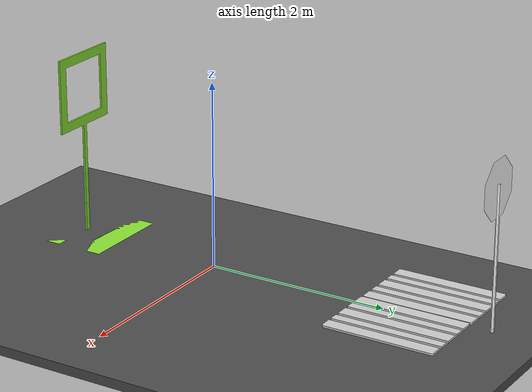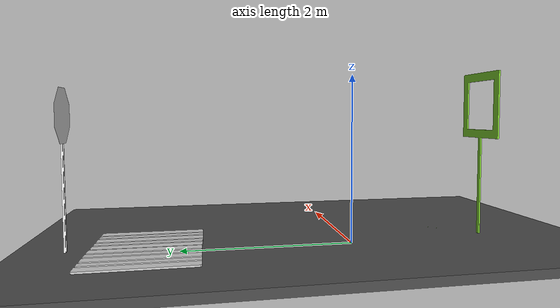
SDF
<?xml version='1.0'?>
<sdf version='1.7'>
  <model name='one_gate_model'>
    <model name='Stop Sign'>
      <static>1</static>
      <link name='link'>
        <collision name='collision'>
          <geometry>
            <mesh>
              <uri>model://stop_sign/meshes/stop_sign.dae</uri>
            </mesh>
          </geometry>
        </collision>
        <visual name='visual'>
          <geometry>
            <mesh>
              <uri>model://stop_sign/meshes/stop_sign.dae</uri>
            </mesh>
          </geometry>
          <material>
            <script>
              <uri>model://stop_sign/materials/scripts</uri>
              <uri>model://stop_sign/materials/textures</uri>
              <name>StopSign/Diffuse</name>
            </script>
          </material>
        </visual>
      </link>
      <pose>0.007187 3.19448 0 0 -0 0</pose>
    </model>
    <model name='asphalt_plane'>
      <static>1</static>
      <link name='link'>
        <collision name='collision'>
          <geometry>
            <box>
              <size>20 20 0.1</size>
            </box>
          </geometry>
        </collision>
        <visual name='visual'>
          <cast_shadows>0</cast_shadows>
          <geometry>
            <box>
              <size>20 20 0.1</size>
            </box>
          </geometry>
          <material>
            <script>
              <uri>model://asphalt_plane/materials/scripts</uri>
              <uri>model://asphalt_plane/materials/textures</uri>
              <name>vrc/asphalt</name>
            </script>
          </material>
        </visual>
      </link>
      <pose>0.069758 -6.25762 0 0 -0 0</pose>
    </model>
    <model name='euro_pallet'>
      <link name='link'>
        <pose>0 0 0 0 -0 0</pose>
        <inertial>
          <mass>20</mass>
          <inertia>
            <ixx>2.43</ixx>
            <ixy>0</ixy>
            <ixz>0</ixz>
            <iyy>1.1</iyy>
            <iyz>0</iyz>
            <izz>3.47</izz>
          </inertia>
        </inertial>
        <collision name='collision'>
          <pose>0 0 0.05 0 -0 0</pose>
          <geometry>
            <mesh>
              <uri>model://euro_pallet/meshes/pallet.dae</uri>
              <scale>0.1 0.1 0.1</scale>
            </mesh>
          </geometry>
        </collision>
        <visual name='visual'>
          <pose>0 0 0.05 0 -0 0</pose>
          <geometry>
            <mesh>
              <uri>model://euro_pallet/meshes/pallet.dae</uri>
              <scale>0.1 0.1 0.1</scale>
            </mesh>
          </geometry>
        </visual>
      </link>
      <pose>-0.42363 2.35188 0 0 -0 0</pose>
    </model>
    <model name='euro_pallet_0'>
      <link name='link'>
        <pose>0 0 0 0 -0 0</pose>
        <inertial>
          <mass>20</mass>
          <inertia>
            <ixx>2.43</ixx>
            <ixy>0</ixy>
            <ixz>0</ixz>
            <iyy>1.1</iyy>
            <iyz>0</iyz>
            <izz>3.47</izz>
          </inertia>
        </inertial>
        <collision name='collision'>
          <pose>0 0 0.05 0 -0 0</pose>
          <geometry>
            <mesh>
              <uri>model://euro_pallet/meshes/pallet.dae</uri>
              <scale>0.1 0.1 0.1</scale>
            </mesh>
          </geometry>
        </collision>
        <visual name='visual'>
          <pose>0 0 0.05 0 -0 0</pose>
          <geometry>
            <mesh>
              <uri>model://euro_pallet/meshes/pallet.dae</uri>
              <scale>0.1 0.1 0.1</scale>
            </mesh>
          </geometry>
        </visual>
      </link>
      <pose>0.382157 2.34594 0 0 -0 0</pose>
    </model>
    <model name='square_gate'>
      <link name='link_0'>
        <inertial>
          <mass>1</mass>
          <inertia>
            <ixx>0.166667</ixx>
            <ixy>0</ixy>
            <ixz>0</ixz>
            <iyy>0.166667</iyy>
            <iyz>0</iyz>
            <izz>0.166667</izz>
          </inertia>
          <pose>0 0 0 0 -0 0</pose>
        </inertial>
        <pose>0 0 0 0 -0 0</pose>
        <gravity>1</gravity>
        <self_collide>0</self_collide>
        <kinematic>0</kinematic>
        <enable_wind>0</enable_wind>
        <visual name='visual'>
          <pose>0 0 0 0 -0 0</pose>
          <geometry>
            <mesh>
              <uri>model://square_gate/square_gate.dae</uri>
              <scale>1 1 1</scale>
            </mesh>
          </geometry>
          <material>
            <lighting>1</lighting>
            <script>
              <uri>file://media/materials/scripts/gazebo.material</uri>
              <name>Gazebo/Grey</name>
            </script>
            <shader type='pixel'>
              <normal_map>__default__</normal_map>
            </shader>
            <ambient>0.541 0.886 0.204 1</ambient>
            <diffuse>0.7 0.7 0.7 1</diffuse>
            <specular>0.01 0.01 0.01 1</specular>
            <emissive>0 0 0 1</emissive>
          </material>
          <transparency>0</transparency>
          <cast_shadows>1</cast_shadows>
        </visual>
        <collision name='collision'>
          <laser_retro>0</laser_retro>
          <max_contacts>10</max_contacts>
          <pose>0 0 0 0 -0 0</pose>
          <geometry>
            <mesh>
              <uri>model://square_gate/square_gate.dae</uri>
              <scale>1 1 1</scale>
            </mesh>
          </geometry>
          <surface>
            <friction>
              <ode>
                <mu>1</mu>
                <mu2>1</mu2>
                <fdir1>0 0 0</fdir1>
                <slip1>0</slip1>
                <slip2>0</slip2>
              </ode>
              <torsional>
                <coefficient>1</coefficient>
                <patch_radius>0</patch_radius>
                <surface_radius>0</surface_radius>
                <use_patch_radius>1</use_patch_radius>
                <ode>
                  <slip>0</slip>
                </ode>
              </torsional>
            </friction>
            <bounce>
              <restitution_coefficient>0</restitution_coefficient>
              <threshold>1e+06</threshold>
            </bounce>
            <contact>
              <collide_without_contact>0</collide_without_contact>
              <collide_without_contact_bitmask>1</collide_without_contact_bitmask>
              <collide_bitmask>1</collide_bitmask>
              <ode>
                <soft_cfm>0</soft_cfm>
                <soft_erp>0.2</soft_erp>
                <kp>1e+13</kp>
                <kd>1</kd>
                <max_vel>0.01</max_vel>
                <min_depth>0</min_depth>
              </ode>
              <bullet>
                <split_impulse>1</split_impulse>
                <split_impulse_penetration_threshold>-0.01</split_impulse_penetration_threshold>
                <soft_cfm>0</soft_cfm>
                <soft_erp>0.2</soft_erp>
                <kp>1e+13</kp>
                <kd>1</kd>
              </bullet>
            </contact>
          </surface>
        </collision>
      </link>
      <static>0</static>
      <allow_auto_disable>1</allow_auto_disable>
      <pose>-0.035473 -1.63469 0 0 -0 0</pose>
    </model>
    <static>0</static>
    <allow_auto_disable>1</allow_auto_disable>
  </model>
</sdf>
